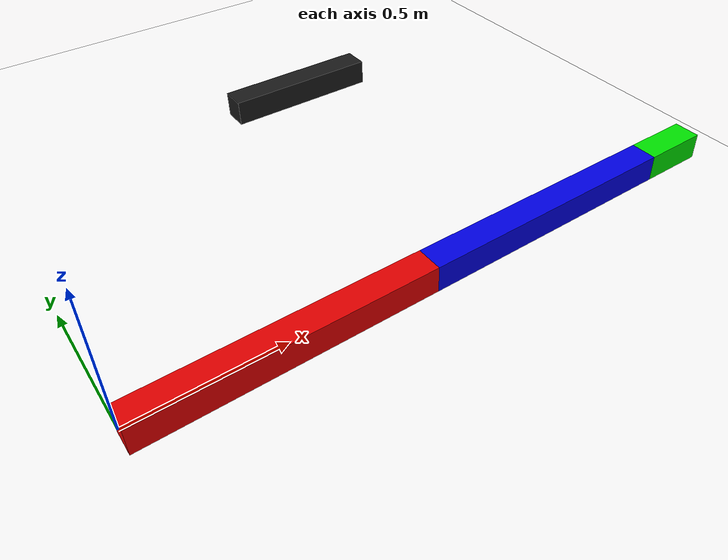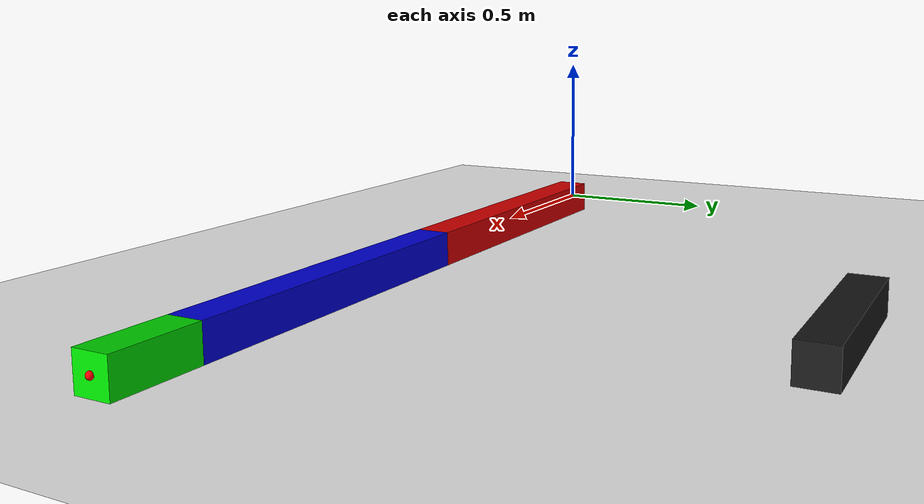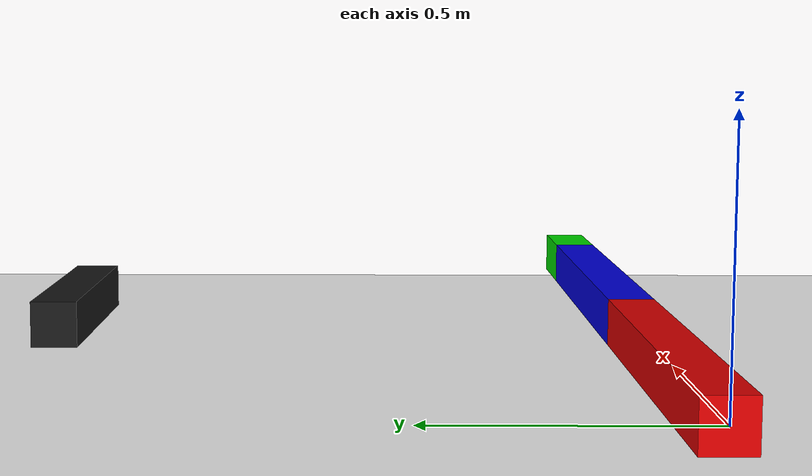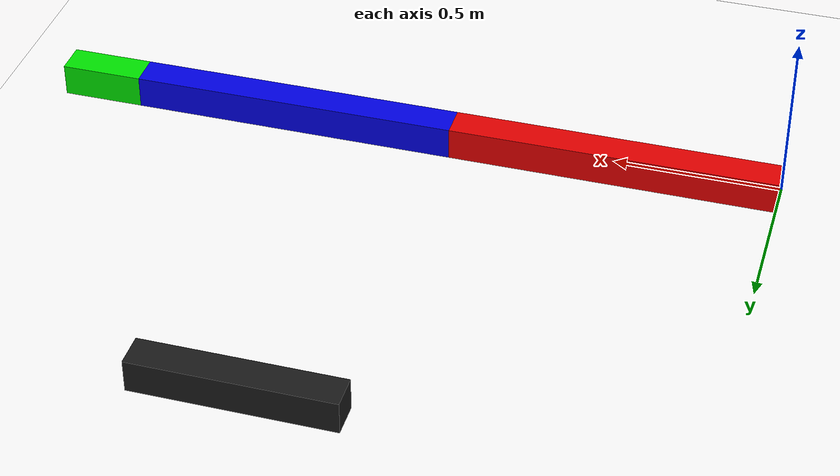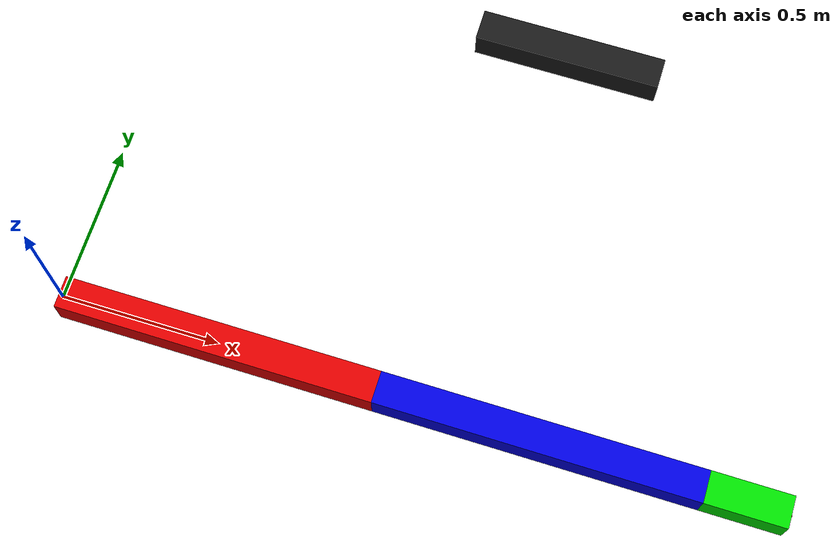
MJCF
<mujoco>
  <option gravity = "0 -9.81 0"/>
   <worldbody>
      <light diffuse="0 0 0" pos="0 0 10" dir="0 0 -1"/>
      <geom type="plane" size="2.5 2.5 0.01" rgba="1 1 1 1" pos = "0 0 -0.1"/>
      <body name = "body0" pos="0 0 0">
        <inertial mass="1" pos="0.5 0 0" fullinertia="1 1 0.1 0 0 0"/>
         <joint name="joint0" type="hinge" axis = "0 0 1" pos = "0 0 0"/>
         <geom type="box" size="0.5 0.05 0.05" rgba="0.9 0 0 1" pos="0.5 0 0"/>
         <body pos="1 0 0"> <!-- put wrt to body frame of previous body -->
           <inertial mass="1" pos="0.5 0 0" fullinertia="1 1 0.1 0 0 0"/> <!-- put wrt to body frame -->
           <joint name="joint1" type="hinge" axis = "0 0 1" pos = "0 0 0"/> <!-- put wrt to body frame -->
           <geom type="box" size="0.5 0.05 0.05" rgba="0 0 0.9 1" pos="0.5 0 0"/> <!-- key: put geom frame 0.5,0,0 from body frame -->
           <body pos="1 0 0">
             <inertial mass="0.2" pos="0.125 0 0" fullinertia="0.1 0.1 0.02 0 0 0"/>
             <joint name="joint2" type="hinge" axis = "0 0 1" pos = "0 0 0"/>
             <geom type="box" size="0.125 0.05 0.05" rgba="0 0.9 0 1" pos="0.125 0 0"/>
             <site name="tip" pos="0.25 0 0" size="0.01" rgba="1 0 0 1"/>
           </body>
         </body>
      </body>
      <body name = "surface" pos="1.25 1.25 0.0"  euler="0 0 0">
        <geom type="box" size="0.3 0.05 0.05" rgba=".1 .1 .1 1" pos="0 0 0"/>
      </body>
   </worldbody>
   <sensor>
     <framepos objtype="site" objname="tip"/>
   </sensor>
   <actuator>
     <motor name="joint0" joint="joint0" />
     <motor name="joint1" joint="joint1" />
     <motor name="joint2" joint="joint2" />
   </actuator>
   <keyframe>
     <key name="home" qpos="1.57 -1.57 1.57" ctrl="1.57 -1.57 1.57"/>
   </keyframe>
</mujoco>
